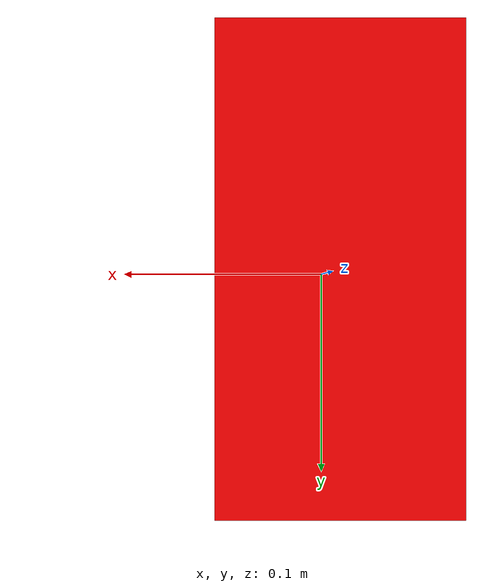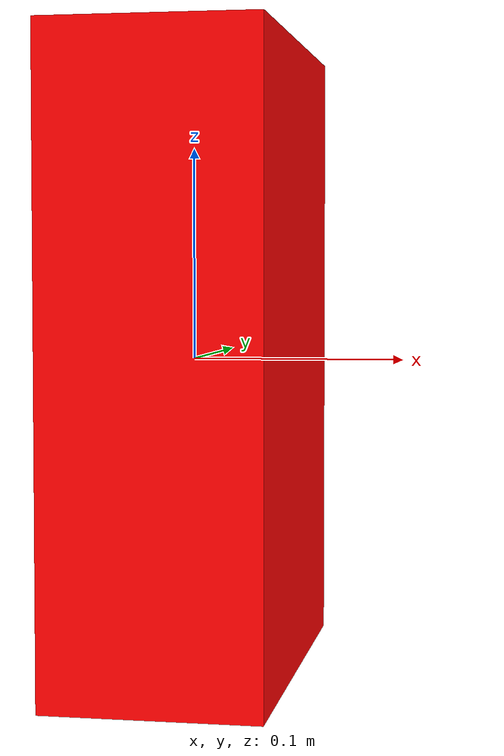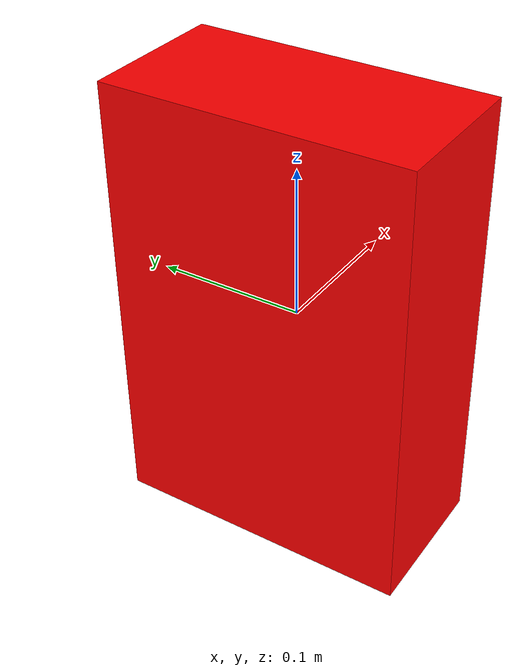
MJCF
<mujoco>
    <worldbody>
        <light name="top" pos="0 0 3"/>
        <body name="object">
            <joint name="tx" type="slide" axis="1 0 0"/>
            <joint name="ty" type="slide" axis="0 1 0"/>
            <joint name="tz" type="slide" axis="0 0 1"/>
            <joint name="rx" type="hinge" axis="1 0 0"/>
            <joint name="ry" type="hinge" axis="0 1 0"/>
            <joint name="rz" type="hinge" axis="0 0 1"/>
            <site name="ft_sen"/>
            <geom name="red_box" type="box" size=".05 .1 .15" rgba="1 0 0 1"/>
        </body>
    </worldbody>

    <actuator>
        <motor name="mtr_tx" joint="tx"/>
        <motor name="mtr_ty" joint="ty"/>
        <motor name="mtr_tz" joint="tz"/>
        <motor name="mtr_rx" joint="rx"/>
        <motor name="mtr_ry" joint="ry"/>
        <motor name="mtr_rz" joint="rz"/>
    </actuator>

    <sensor>
        <jointpos name="tx" joint="tx"/>
        <jointpos name="ty" joint="ty"/>
        <jointpos name="tz" joint="tz"/>
        <jointpos name="rx" joint="rx"/>
        <jointpos name="ry" joint="ry"/>
        <jointpos name="rz" joint="rz"/>
        <jointvel name="dtx" joint="tx"/>
        <jointvel name="dty" joint="ty"/>
        <jointvel name="dtz" joint="tz"/>
        <jointvel name="drx" joint="rx"/>
        <jointvel name="dry" joint="ry"/>
        <jointvel name="drz" joint="rz"/>
        <actuatorfrc name="frc_tx" actuator="mtr_tx"/>
        <actuatorfrc name="frc_ty" actuator="mtr_ty"/>
        <actuatorfrc name="frc_tz" actuator="mtr_tz"/>
        <actuatorfrc name="frc_rx" actuator="mtr_rx"/>
        <actuatorfrc name="frc_ry" actuator="mtr_ry"/>
        <actuatorfrc name="frc_rz" actuator="mtr_rz"/>
        <force name="frc" site="ft_sen"/>
        <torque name="trq" site="ft_sen"/>
    </sensor>

    <visual>
        <global offwidth="960" offheight="600"/>
    </visual>
</mujoco>
